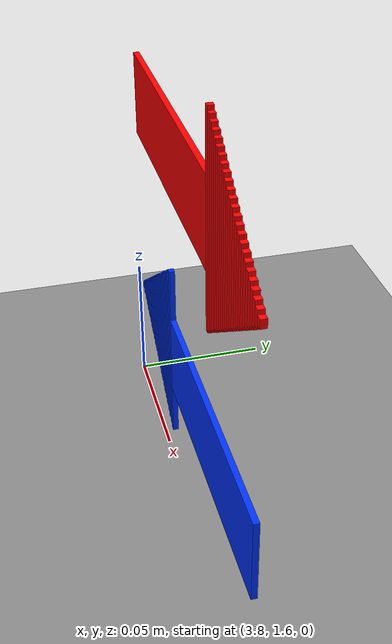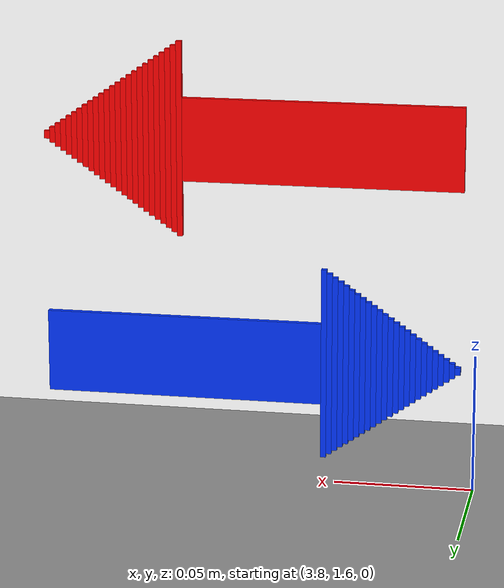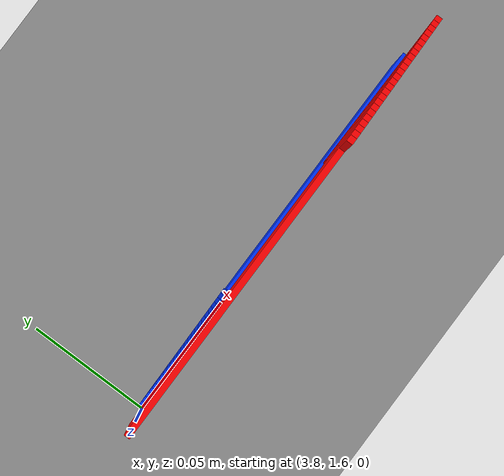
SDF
<sdf version="1.9">
 <world name="ros2_world">
  <model name="ground_plane">
   <static>true</static>
   <link name="link">
    <collision name="collision">
     <geometry><plane><normal>0 0 1</normal><size>30 30</size></plane></geometry>
    </collision>
    <visual name="visual">
     <geometry><plane><normal>0 0 1</normal><size>30 30</size></plane></geometry>
     <material><ambient>0.55 0.55 0.55 1</ambient><diffuse>0.55 0.55 0.55 1</diffuse></material>
    </visual>
   </link>
  </model>
  <model name="flechas">
   <static>true</static>
   <link name="flecha_12">
    <pose>3.88 1.6015 0.125 0 0 0</pose>
    <visual name="p0">
     <pose>-0.025 0 0 0 0 0</pose>
     <geometry><box><size>0.1 0.002 0.03</size></box></geometry>
     <material><ambient>1 0 0 1</ambient><diffuse>1 0 0 1</diffuse></material>
    </visual>
    <visual name="p1">
     <pose>0.026 0 0 0 0 0</pose>
     <geometry><box><size>0.002 0.002 0.07</size></box></geometry>
     <material><ambient>1 0 0 1</ambient><diffuse>1 0 0 1</diffuse></material>
    </visual>
    <visual name="p2">
     <pose>0.028 0 0 0 0 0</pose>
     <geometry><box><size>0.002 0.002 0.0672</size></box></geometry>
     <material><ambient>1 0 0 1</ambient><diffuse>1 0 0 1</diffuse></material>
    </visual>
    <visual name="p3">
     <pose>0.03 0 0 0 0 0</pose>
     <geometry><box><size>0.002 0.002 0.0644</size></box></geometry>
     <material><ambient>1 0 0 1</ambient><diffuse>1 0 0 1</diffuse></material>
    </visual>
    <visual name="p4">
     <pose>0.032 0 0 0 0 0</pose>
     <geometry><box><size>0.002 0.002 0.0616</size></box></geometry>
     <material><ambient>1 0 0 1</ambient><diffuse>1 0 0 1</diffuse></material>
    </visual>
    <visual name="p5">
     <pose>0.034 0 0 0 0 0</pose>
     <geometry><box><size>0.002 0.002 0.0588</size></box></geometry>
     <material><ambient>1 0 0 1</ambient><diffuse>1 0 0 1</diffuse></material>
    </visual>
    <visual name="p6">
     <pose>0.036 0 0 0 0 0</pose>
     <geometry><box><size>0.002 0.002 0.056</size></box></geometry>
     <material><ambient>1 0 0 1</ambient><diffuse>1 0 0 1</diffuse></material>
    </visual>
    <visual name="p7">
     <pose>0.038 0 0 0 0 0</pose>
     <geometry><box><size>0.002 0.002 0.0532</size></box></geometry>
     <material><ambient>1 0 0 1</ambient><diffuse>1 0 0 1</diffuse></material>
    </visual>
    <visual name="p8">
     <pose>0.04 0 0 0 0 0</pose>
     <geometry><box><size>0.002 0.002 0.0504</size></box></geometry>
     <material><ambient>1 0 0 1</ambient><diffuse>1 0 0 1</diffuse></material>
    </visual>
    <visual name="p9">
     <pose>0.042 0 0 0 0 0</pose>
     <geometry><box><size>0.002 0.002 0.0476</size></box></geometry>
     <material><ambient>1 0 0 1</ambient><diffuse>1 0 0 1</diffuse></material>
    </visual>
    <visual name="p10">
     <pose>0.044 0 0 0 0 0</pose>
     <geometry><box><size>0.002 0.002 0.0448</size></box></geometry>
     <material><ambient>1 0 0 1</ambient><diffuse>1 0 0 1</diffuse></material>
    </visual>
    <visual name="p11">
     <pose>0.046 0 0 0 0 0</pose>
     <geometry><box><size>0.002 0.002 0.042</size></box></geometry>
     <material><ambient>1 0 0 1</ambient><diffuse>1 0 0 1</diffuse></material>
    </visual>
    <visual name="p12">
     <pose>0.048 0 0 0 0 0</pose>
     <geometry><box><size>0.002 0.002 0.0392</size></box></geometry>
     <material><ambient>1 0 0 1</ambient><diffuse>1 0 0 1</diffuse></material>
    </visual>
    <visual name="p13">
     <pose>0.05 0 0 0 0 0</pose>
     <geometry><box><size>0.002 0.002 0.0364</size></box></geometry>
     <material><ambient>1 0 0 1</ambient><diffuse>1 0 0 1</diffuse></material>
    </visual>
    <visual name="p14">
     <pose>0.052 0 0 0 0 0</pose>
     <geometry><box><size>0.002 0.002 0.0336</size></box></geometry>
     <material><ambient>1 0 0 1</ambient><diffuse>1 0 0 1</diffuse></material>
    </visual>
    <visual name="p15">
     <pose>0.054 0 0 0 0 0</pose>
     <geometry><box><size>0.002 0.002 0.0308</size></box></geometry>
     <material><ambient>1 0 0 1</ambient><diffuse>1 0 0 1</diffuse></material>
    </visual>
    <visual name="p16">
     <pose>0.056 0 0 0 0 0</pose>
     <geometry><box><size>0.002 0.002 0.028</size></box></geometry>
     <material><ambient>1 0 0 1</ambient><diffuse>1 0 0 1</diffuse></material>
    </visual>
    <visual name="p17">
     <pose>0.058 0 0 0 0 0</pose>
     <geometry><box><size>0.002 0.002 0.0252</size></box></geometry>
     <material><ambient>1 0 0 1</ambient><diffuse>1 0 0 1</diffuse></material>
    </visual>
    <visual name="p18">
     <pose>0.06 0 0 0 0 0</pose>
     <geometry><box><size>0.002 0.002 0.0224</size></box></geometry>
     <material><ambient>1 0 0 1</ambient><diffuse>1 0 0 1</diffuse></material>
    </visual>
    <visual name="p19">
     <pose>0.062 0 0 0 0 0</pose>
     <geometry><box><size>0.002 0.002 0.0196</size></box></geometry>
     <material><ambient>1 0 0 1</ambient><diffuse>1 0 0 1</diffuse></material>
    </visual>
    <visual name="p20">
     <pose>0.064 0 0 0 0 0</pose>
     <geometry><box><size>0.002 0.002 0.0168</size></box></geometry>
     <material><ambient>1 0 0 1</ambient><diffuse>1 0 0 1</diffuse></material>
    </visual>
    <visual name="p21">
     <pose>0.066 0 0 0 0 0</pose>
     <geometry><box><size>0.002 0.002 0.014</size></box></geometry>
     <material><ambient>1 0 0 1</ambient><diffuse>1 0 0 1</diffuse></material>
    </visual>
    <visual name="p22">
     <pose>0.068 0 0 0 0 0</pose>
     <geometry><box><size>0.002 0.002 0.0112</size></box></geometry>
     <material><ambient>1 0 0 1</ambient><diffuse>1 0 0 1</diffuse></material>
    </visual>
    <visual name="p23">
     <pose>0.07 0 0 0 0 0</pose>
     <geometry><box><size>0.002 0.002 0.0084</size></box></geometry>
     <material><ambient>1 0 0 1</ambient><diffuse>1 0 0 1</diffuse></material>
    </visual>
    <visual name="p24">
     <pose>0.072 0 0 0 0 0</pose>
     <geometry><box><size>0.002 0.002 0.0056</size></box></geometry>
     <material><ambient>1 0 0 1</ambient><diffuse>1 0 0 1</diffuse></material>
    </visual>
    <visual name="p25">
     <pose>0.074 0 0 0 0 0</pose>
     <geometry><box><size>0.002 0.002 0.0028</size></box></geometry>
     <material><ambient>1 0 0 1</ambient><diffuse>1 0 0 1</diffuse></material>
    </visual>
   </link>
   <link name="flecha_13">
    <pose>3.88 1.6015 0.045 0 0 3.14159</pose>
    <visual name="p0">
     <pose>-0.025 0 0 0 0 0</pose>
     <geometry><box><size>0.1 0.002 0.03</size></box></geometry>
     <material><ambient>0 0.2 1 1</ambient><diffuse>0 0.2 1 1</diffuse></material>
    </visual>
    <visual name="p1">
     <pose>0.026 0 0 0 0 0</pose>
     <geometry><box><size>0.002 0.002 0.07</size></box></geometry>
     <material><ambient>0 0.2 1 1</ambient><diffuse>0 0.2 1 1</diffuse></material>
    </visual>
    <visual name="p2">
     <pose>0.028 0 0 0 0 0</pose>
     <geometry><box><size>0.002 0.002 0.0672</size></box></geometry>
     <material><ambient>0 0.2 1 1</ambient><diffuse>0 0.2 1 1</diffuse></material>
    </visual>
    <visual name="p3">
     <pose>0.03 0 0 0 0 0</pose>
     <geometry><box><size>0.002 0.002 0.0644</size></box></geometry>
     <material><ambient>0 0.2 1 1</ambient><diffuse>0 0.2 1 1</diffuse></material>
    </visual>
    <visual name="p4">
     <pose>0.032 0 0 0 0 0</pose>
     <geometry><box><size>0.002 0.002 0.0616</size></box></geometry>
     <material><ambient>0 0.2 1 1</ambient><diffuse>0 0.2 1 1</diffuse></material>
    </visual>
    <visual name="p5">
     <pose>0.034 0 0 0 0 0</pose>
     <geometry><box><size>0.002 0.002 0.0588</size></box></geometry>
     <material><ambient>0 0.2 1 1</ambient><diffuse>0 0.2 1 1</diffuse></material>
    </visual>
    <visual name="p6">
     <pose>0.036 0 0 0 0 0</pose>
     <geometry><box><size>0.002 0.002 0.056</size></box></geometry>
     <material><ambient>0 0.2 1 1</ambient><diffuse>0 0.2 1 1</diffuse></material>
    </visual>
    <visual name="p7">
     <pose>0.038 0 0 0 0 0</pose>
     <geometry><box><size>0.002 0.002 0.0532</size></box></geometry>
     <material><ambient>0 0.2 1 1</ambient><diffuse>0 0.2 1 1</diffuse></material>
    </visual>
    <visual name="p8">
     <pose>0.04 0 0 0 0 0</pose>
     <geometry><box><size>0.002 0.002 0.0504</size></box></geometry>
     <material><ambient>0 0.2 1 1</ambient><diffuse>0 0.2 1 1</diffuse></material>
    </visual>
    <visual name="p9">
     <pose>0.042 0 0 0 0 0</pose>
     <geometry><box><size>0.002 0.002 0.0476</size></box></geometry>
     <material><ambient>0 0.2 1 1</ambient><diffuse>0 0.2 1 1</diffuse></material>
    </visual>
    <visual name="p10">
     <pose>0.044 0 0 0 0 0</pose>
     <geometry><box><size>0.002 0.002 0.0448</size></box></geometry>
     <material><ambient>0 0.2 1 1</ambient><diffuse>0 0.2 1 1</diffuse></material>
    </visual>
    <visual name="p11">
     <pose>0.046 0 0 0 0 0</pose>
     <geometry><box><size>0.002 0.002 0.042</size></box></geometry>
     <material><ambient>0 0.2 1 1</ambient><diffuse>0 0.2 1 1</diffuse></material>
    </visual>
    <visual name="p12">
     <pose>0.048 0 0 0 0 0</pose>
     <geometry><box><size>0.002 0.002 0.0392</size></box></geometry>
     <material><ambient>0 0.2 1 1</ambient><diffuse>0 0.2 1 1</diffuse></material>
    </visual>
    <visual name="p13">
     <pose>0.05 0 0 0 0 0</pose>
     <geometry><box><size>0.002 0.002 0.0364</size></box></geometry>
     <material><ambient>0 0.2 1 1</ambient><diffuse>0 0.2 1 1</diffuse></material>
    </visual>
    <visual name="p14">
     <pose>0.052 0 0 0 0 0</pose>
     <geometry><box><size>0.002 0.002 0.0336</size></box></geometry>
     <material><ambient>0 0.2 1 1</ambient><diffuse>0 0.2 1 1</diffuse></material>
    </visual>
    <visual name="p15">
     <pose>0.054 0 0 0 0 0</pose>
     <geometry><box><size>0.002 0.002 0.0308</size></box></geometry>
     <material><ambient>0 0.2 1 1</ambient><diffuse>0 0.2 1 1</diffuse></material>
    </visual>
    <visual name="p16">
     <pose>0.056 0 0 0 0 0</pose>
     <geometry><box><size>0.002 0.002 0.028</size></box></geometry>
     <material><ambient>0 0.2 1 1</ambient><diffuse>0 0.2 1 1</diffuse></material>
    </visual>
    <visual name="p17">
     <pose>0.058 0 0 0 0 0</pose>
     <geometry><box><size>0.002 0.002 0.0252</size></box></geometry>
     <material><ambient>0 0.2 1 1</ambient><diffuse>0 0.2 1 1</diffuse></material>
    </visual>
    <visual name="p18">
     <pose>0.06 0 0 0 0 0</pose>
     <geometry><box><size>0.002 0.002 0.0224</size></box></geometry>
     <material><ambient>0 0.2 1 1</ambient><diffuse>0 0.2 1 1</diffuse></material>
    </visual>
    <visual name="p19">
     <pose>0.062 0 0 0 0 0</pose>
     <geometry><box><size>0.002 0.002 0.0196</size></box></geometry>
     <material><ambient>0 0.2 1 1</ambient><diffuse>0 0.2 1 1</diffuse></material>
    </visual>
    <visual name="p20">
     <pose>0.064 0 0 0 0 0</pose>
     <geometry><box><size>0.002 0.002 0.0168</size></box></geometry>
     <material><ambient>0 0.2 1 1</ambient><diffuse>0 0.2 1 1</diffuse></material>
    </visual>
    <visual name="p21">
     <pose>0.066 0 0 0 0 0</pose>
     <geometry><box><size>0.002 0.002 0.014</size></box></geometry>
     <material><ambient>0 0.2 1 1</ambient><diffuse>0 0.2 1 1</diffuse></material>
    </visual>
    <visual name="p22">
     <pose>0.068 0 0 0 0 0</pose>
     <geometry><box><size>0.002 0.002 0.0112</size></box></geometry>
     <material><ambient>0 0.2 1 1</ambient><diffuse>0 0.2 1 1</diffuse></material>
    </visual>
    <visual name="p23">
     <pose>0.07 0 0 0 0 0</pose>
     <geometry><box><size>0.002 0.002 0.0084</size></box></geometry>
     <material><ambient>0 0.2 1 1</ambient><diffuse>0 0.2 1 1</diffuse></material>
    </visual>
    <visual name="p24">
     <pose>0.072 0 0 0 0 0</pose>
     <geometry><box><size>0.002 0.002 0.0056</size></box></geometry>
     <material><ambient>0 0.2 1 1</ambient><diffuse>0 0.2 1 1</diffuse></material>
    </visual>
    <visual name="p25">
     <pose>0.074 0 0 0 0 0</pose>
     <geometry><box><size>0.002 0.002 0.0028</size></box></geometry>
     <material><ambient>0 0.2 1 1</ambient><diffuse>0 0.2 1 1</diffuse></material>
    </visual>
   </link>
  </model>
 </world>
</sdf>
